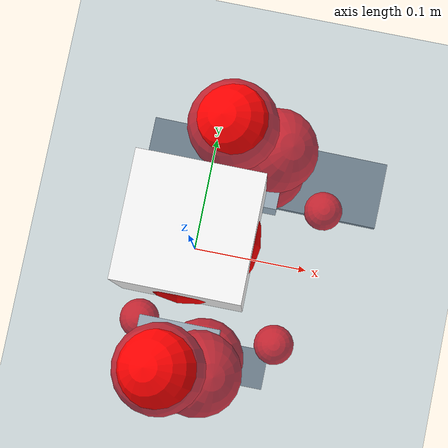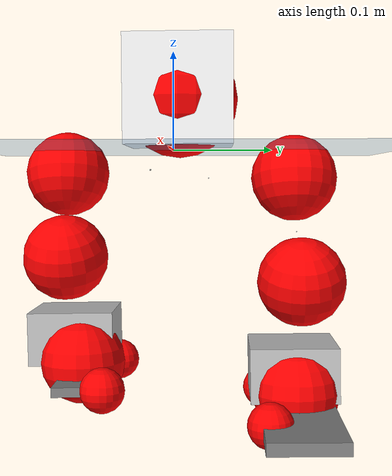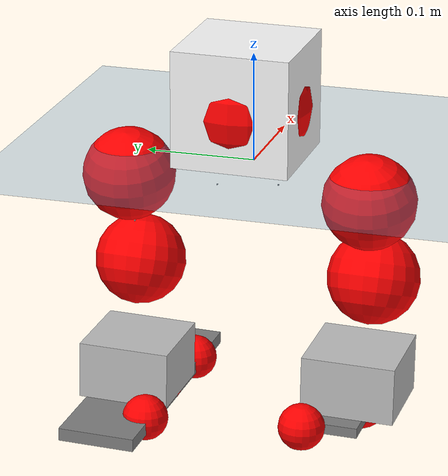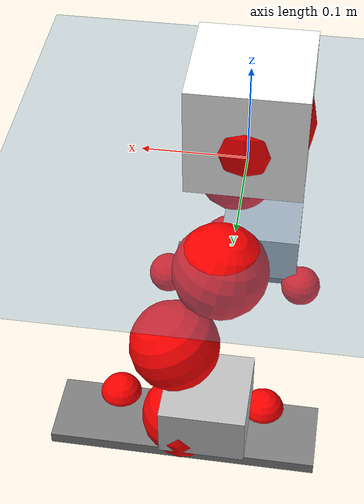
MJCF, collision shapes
<mujoco model="pi_12dof_release_v1">
  <compiler angle="radian" assetdir="assets" balanceinertia="true" inertiafromgeom="false"/>

  <option timestep="0.005" density="1.2" viscosity="2e-05"/>

  <size nkey="1"/>

  <visual>
    <quality shadowsize="8192"/>
    <map shadowclip="0.5"/>
  </visual>

  <default>
    <default class="/">
      <joint armature="0.01" damping="0.01" frictionloss="0.01"/>
      <geom contype="0" conaffinity="0" group="1" solref="-1000 -80"/>
      <site size="0.01 0.005 0.005" group="5"/>
      <general forcelimited="true" biastype="affine" gainprm="20" biasprm="0 -20 -0.5"/>
      <default class="foot">
        <geom size="0.0845 0.036 0.005" type="box" condim="6" group="4" priority="1" friction="0.9 0.2 0.2" solimp="0.015 1 0.005"/>
      </default>
      <default class="reward_collision_sphere">
        <geom group="5" rgba="1 0 0 1"/>
      </default>
    </default>
  </default>

  <asset>
    <texture type="skybox" colorspace="auto" name="//unnamed_texture_0" builtin="gradient" rgb1="0.95 0.95 0.95" rgb2="0.95 0.95 0.95" width="100" height="600"/>
    <texture type="2d" colorspace="auto" name="texplane" builtin="checker" rgb1="0.345 0.575 0.748" rgb2="0.345 0.575 0.748" markrgb="1 1 1" width="512" height="512"/>
    <material name="MatPlane" class="/" texture="texplane" texuniform="true" texrepeat="2 2" specular="0.9"/>
    <mesh name="baselink_1" class="/" file="baselink_1.STL"/>
    <mesh name="r_hip_pitch_link" class="/" file="r_hip_pitch_link.STL"/>
    <mesh name="r_hip_roll_link" class="/" file="r_hip_roll_link.STL"/>
    <mesh name="r_thigh_link" class="/" file="r_thigh_link.STL"/>
    <mesh name="r_calf_link" class="/" file="r_calf_link.STL"/>
    <mesh name="r_ankle_pitch_link" class="/" file="r_ankle_pitch_link.STL"/>
    <mesh name="r_ankle_roll_link" class="/" file="r_ankle_roll_link.STL"/>
    <mesh name="l_hip_pitch_link" class="/" file="l_hip_pitch_link.STL"/>
    <mesh name="l_hip_roll_link" class="/" file="l_hip_roll_link.STL"/>
    <mesh name="l_thigh_link" class="/" file="l_thigh_link.STL"/>
    <mesh name="l_calf_link" class="/" file="l_calf_link.STL"/>
    <mesh name="l_ankle_pitch_link" class="/" file="l_ankle_pitch_link.STL"/>
    <mesh name="l_ankle_roll_link" class="/" file="l_ankle_roll_link.STL"/>
  </asset>

  <worldbody>
    <geom name="floor" class="/" size="100 100 0.125" type="plane" group="0" material="MatPlane"/>
    <light name="toplight_shadow" class="/" pos="0 0 5" dir="0.0990148 0.0990148 -0.990148" type="directional" ambient="0.04 0.04 0.04" diffuse="0.55 0.55 0.55" specular="0.12 0.12 0.12"/>
    <light name="toplight_fill" class="/" pos="0 0 5" dir="0.0990148 0.0990148 -0.990148" type="directional" castshadow="false" ambient="0.04 0.04 0.04" diffuse="0.3 0.3 0.3" specular="0.08 0.08 0.08"/>
    <body name="trunk" pos="-0.00161679 0.00673028 0.00233719" quat="0.999994 0.0032153 0.000759096 -0.000784298">
      <inertial pos="0.00805546 0.0114928 0.0212203" quat="0.703097 0.0326451 0.00226204 0.710341" mass="2.78318" diaginertia="0.0198663 0.0638306 0.000722312"/>
      <joint name="//unnamed_joint_0" type="free"/>
      <geom name="//unnamed_geom_1" class="/" type="mesh" density="0" rgba="1 1 1 1" mesh="baselink_1"/>
      <geom name="//unnamed_geom_2" class="/" size="0.0539117 0.0539117 0.0539117" pos="0 0 0.0561674" type="box" rgba="1 1 1 1"/>
      <geom name="//unnamed_geom_3" class="reward_collision_sphere" size="0.0593029" pos="0 0 0.0491465"/>
      <site name="imu" class="/" pos="-0.00321667 0.00618542 0.00622472" size="0.0107823"/>
      <camera name="track" class="/" pos="0 -2.88096 0" quat="0.707107 0.707107 0 0" mode="trackcom"/>
      <camera name="ego_camera" class="/" pos="0.0819096 0 0.126377" quat="-0.5 -0.5 0.5 0.5"/>
      <body name="r_hip_pitch_link" pos="-0.00246465 -0.0311331 -0.0220422" quat="0.99219 9.20817e-05 -0.124734 0.000283016">
        <inertial pos="0.00288124 -0.0707756 0.0029214" quat="-0.0348482 0.67112 -0.0711104 0.737107" mass="0.467589" diaginertia="0.000164351 0.000633226 1.37701e-05"/>
        <joint name="r_hip_pitch_joint" class="/" pos="0 0 0" axis="-0.000693685 -1 -2.12852e-06" range="-1.87263 1.14001" armature="0.0101955" damping="0" frictionloss="0.00497715"/>
        <geom name="//unnamed_geom_4" class="/" type="mesh" density="0" rgba="0.75294 0.75294 0.75294 1" mesh="r_hip_pitch_link"/>
        <geom name="//unnamed_geom_5" class="/" size="0.000539117 0.000539117 0.000539117" type="box" rgba="0.75294 0.75294 0.75294 1"/>
        <body name="r_hip_roll_link" pos="-0.0086175 -0.08676 -0.00169557" quat="0.999982 0.00579191 -0.001664 -0.000571959">
          <inertial pos="-0.00134309 -0.0118804 -0.042571" quat="0.70043 -0.0669514 -0.0743098 0.706678" mass="0.465157" diaginertia="0.000594102 0.0015054 2.24419e-05"/>
          <joint name="r_hip_roll_joint" class="/" pos="0 0 0" axis="-0.999709 0.0090069 -0.0223886" stiffness="0.0105298" range="-0.105073 0.493594" armature="0.00589403" damping="0" frictionloss="0.0104128"/>
          <geom name="//unnamed_geom_6" class="/" type="mesh" density="0" rgba="0.75294 0.75294 0.75294 1" mesh="r_hip_roll_link"/>
          <geom name="//unnamed_geom_7" class="/" size="0.000539117 0.000539117 0.000539117" type="box" rgba="0.75294 0.75294 0.75294 1"/>
          <geom name="//unnamed_geom_8" class="reward_collision_sphere" size="0.0431294"/>
          <body name="r_thigh_link" pos="-0.0025598 -0.000463751 -0.0457664" quat="1 0.000438515 -0.00063923 -0.000110002">
            <inertial pos="0.00993529 0.00792415 -0.0248694" quat="0.734056 0.678943 -0.0128241 0.00587904" mass="0.147077" diaginertia="0.000209966 0.000549106 1.05675e-05"/>
            <joint name="r_thigh_joint" class="/" pos="0 0 0" axis="-0.0210402 0.0417095 -0.998908" stiffness="0.0541825" range="-0.0723249 0.82451" armature="0.0055439" damping="0.0680511" frictionloss="0.00472987"/>
            <geom name="//unnamed_geom_9" class="/" type="mesh" density="0" rgba="0.75294 0.75294 0.75294 1" mesh="r_thigh_link"/>
            <geom name="//unnamed_geom_10" class="/" size="0.000539117 0.000539117 0.000539117" type="box" rgba="0.75294 0.75294 0.75294 1"/>
            <body name="r_calf_link" pos="0.0118861 0.00129284 -0.0440778" quat="0.947678 -0.000455025 0.319226 -0.000339707">
              <inertial pos="-0.00053214 -0.00505122 -0.0448638" quat="0.998783 0.0104989 -0.0479439 -0.0047828" mass="1.08299" diaginertia="0.00608695 0.0216997 2.92998e-05"/>
              <joint name="r_calf_joint" class="/" pos="0 0 0" axis="-0.00846766 -0.998069 -0.0615379" stiffness="0.00970877" range="-1.54926 0.656428" armature="0.0101606" damping="0.0204352" frictionloss="0.00519182"/>
              <geom name="//unnamed_geom_11" class="/" type="mesh" density="0" rgba="0.75294 0.75294 0.75294 1" mesh="r_calf_link"/>
              <geom name="//unnamed_geom_12" class="/" size="0.000539117 0.000539117 0.000539117" type="box" rgba="0.75294 0.75294 0.75294 1"/>
              <geom name="//unnamed_geom_13" class="reward_collision_sphere" size="0.0431294"/>
              <body name="r_ankle_pitch_link" pos="0.00342186 0.00377813 -0.088563" quat="0.980072 0.000624579 -0.198641 0.000298648">
                <inertial pos="0.000353287 0.0114412 -0.0105942" quat="0.0101465 0.713796 -0.00997915 0.700209" mass="0.212905" diaginertia="0.000513697 0.00136133 2.02414e-05"/>
                <joint name="r_ankle_pitch_joint" class="/" pos="0 0 0" axis="0.00412079 -0.999983 -0.0040829" stiffness="0.00732159" range="-1.16128 0.712979" armature="0.00628325" damping="0.00532033" frictionloss="0.00544088"/>
                <geom name="//unnamed_geom_14" class="/" type="mesh" density="0" rgba="0.75294 0.75294 0.75294 1" mesh="r_ankle_pitch_link"/>
                <geom name="//unnamed_geom_15" class="/" size="0.0420511 0.0431294 0.0269559" type="box" rgba="0.75294 0.75294 0.75294 1"/>
                <body name="r_ankle_roll_link" pos="0.082823 0.010765 -0.00993433" quat="1 -0.000261691 -7.55315e-05 0.000491381">
                  <inertial pos="-0.0199023 -0.00627148 -0.00908242" quat="0.556426 0.433132 0.44914 0.548689" mass="0.551466" diaginertia="0.00155748 0.00494737 4.41367e-05"/>
                  <joint name="r_ankle_roll_joint" class="/" pos="0 0 0" axis="-0.997871 0.041586 0.0502466" range="-0.393786 -0.0176697" armature="0.0102561" damping="0" frictionloss="0.00948403"/>
                  <geom name="//unnamed_geom_16" class="/" type="mesh" density="0" rgba="0.75294 0.75294 0.75294 1" mesh="r_ankle_roll_link"/>
                  <geom name="//unnamed_geom_17" class="/" type="mesh" rgba="0.75294 0.75294 0.75294 1" mesh="r_ankle_roll_link"/>
                  <geom name="right_foot" class="foot" size="0.0680347 0.0208982 0.00477451" pos="-0.0556985 0 -0.0308921"/>
                  <geom name="//unnamed_geom_19" class="reward_collision_sphere" size="0.0431294" pos="-0.0546064 0 -0.0140419"/>
                  <geom name="//unnamed_geom_20" class="reward_collision_sphere" size="0.0215647" pos="0.0163819 0.0288096 -0.0280837"/>
                  <geom name="//unnamed_geom_21" class="reward_collision_sphere" size="0.0215647" pos="-0.131055 0.0288096 -0.0280837"/>
                  <site name="right_foot" class="foot" pos="-0.0556985 0 -0.0308921" size="0.0107823"/>
                </body>
              </body>
            </body>
          </body>
        </body>
      </body>
      <body name="l_hip_pitch_link" pos="0.00594938 0.0289828 -0.0310126" quat="0.992174 0.000716831 -0.12486 -0.000418399">
        <inertial pos="0.000245539 0.079359 -0.00619016" quat="-0.0364695 0.70912 0.0328595 0.703377" mass="0.58743" diaginertia="0.000209737 0.000718994 1.66747e-05"/>
        <joint name="l_hip_pitch_joint" class="/" pos="0 0 0" axis="0.0104507 0.999904 -0.00911786" range="-1.23275 1.56292" armature="0.0106419" damping="0.022829" frictionloss="0.00995247"/>
        <geom name="//unnamed_geom_22" class="/" type="mesh" density="0" rgba="0.75294 0.75294 0.75294 1" mesh="l_hip_pitch_link"/>
        <geom name="//unnamed_geom_23" class="/" size="0.000539117 0.000539117 0.000539117" type="box" rgba="0.75294 0.75294 0.75294 1"/>
        <body name="l_hip_roll_link" pos="0.00515227 0.0864467 -0.00188452" quat="0.999986 0.00254783 0.00428137 -0.0019566">
          <inertial pos="0.00041124 -0.0124626 -0.0455171" quat="0.690379 -0.105461 -0.0545435 0.713638" mass="0.556676" diaginertia="0.000551088 0.00160098 1.92012e-05"/>
          <joint name="l_hip_roll_joint" class="/" pos="0 0 0" axis="-0.999366 0.0206314 0.0290333" range="-0.528441 0.0614535" armature="0.00443374" damping="0.00844334" frictionloss="0.0136864"/>
          <geom name="//unnamed_geom_24" class="/" type="mesh" density="0" rgba="0.75294 0.75294 0.75294 1" mesh="l_hip_roll_link"/>
          <geom name="//unnamed_geom_25" class="/" size="0.000539117 0.000539117 0.000539117" type="box" rgba="0.75294 0.75294 0.75294 1"/>
          <geom name="//unnamed_geom_26" class="reward_collision_sphere" size="0.0431294"/>
          <body name="l_thigh_link" pos="0.00417974 0.000682926 -0.0560333" quat="0.999997 0.00209168 -0.000880285 0.001237">
            <inertial pos="0.00206938 -0.0105357 -0.0347409" quat="0.671906 0.74063 0.000242779 -0.00309454" mass="0.14478" diaginertia="0.000211228 0.000640445 1.08523e-05"/>
            <joint name="l_thigh_joint" class="/" pos="0 0 0" axis="0.000270415 0.000128662 -1" range="-0.654565 0.262878" armature="0.0138981" damping="0.054999" frictionloss="0.00939299"/>
            <geom name="//unnamed_geom_27" class="/" type="mesh" density="0" rgba="0.75294 0.75294 0.75294 1" mesh="l_thigh_link"/>
            <geom name="//unnamed_geom_28" class="/" size="0.000539117 0.000539117 0.000539117" type="box" rgba="0.75294 0.75294 0.75294 1"/>
            <body name="l_calf_link" pos="0.0117193 0.0022421 -0.0514449" quat="0.948747 0.00162903 0.315995 -0.00498555">
              <inertial pos="0.00176054 0.00779218 -0.0496084" quat="0.999913 0.00928088 0.00206182 0.00910113" mass="1.07614" diaginertia="0.00576462 0.0223197 2.64895e-05"/>
              <joint name="l_calf_joint" class="/" pos="0 0 0" axis="0.0169946 0.999633 0.0211044" stiffness="0.0614868" range="-0.834135 1.70855" armature="0.012773" damping="0.0184808" frictionloss="0.00971794"/>
              <geom name="//unnamed_geom_29" class="/" type="mesh" density="0" rgba="0.75294 0.75294 0.75294 1" mesh="l_calf_link"/>
              <geom name="//unnamed_geom_30" class="/" size="0.000539117 0.000539117 0.000539117" type="box" rgba="0.75294 0.75294 0.75294 1"/>
              <geom name="//unnamed_geom_31" class="reward_collision_sphere" size="0.0431294"/>
              <body name="l_ankle_pitch_link" pos="0.00721136 -0.00811563 -0.0954867" quat="0.980331 0.000229395 -0.197359 0.0011461">
                <inertial pos="0.00620511 0.00666964 -0.00125064" quat="-0.00238347 0.707201 0.00270221 0.707004" mass="0.211133" diaginertia="0.000467601 0.00138978 2.17761e-05"/>
                <joint name="l_ankle_pitch_joint" class="/" pos="0 0 0" axis="-0.00439592 0.999989 -0.00130373" range="-0.511922 1.27818" armature="0.0156968" damping="0" frictionloss="0.0140884"/>
                <geom name="//unnamed_geom_32" class="/" type="mesh" density="0" rgba="0.75294 0.75294 0.75294 1" mesh="l_ankle_pitch_link"/>
                <geom name="//unnamed_geom_33" class="/" size="0.0420511 0.0431294 0.0269559" type="box" rgba="0.75294 0.75294 0.75294 1"/>
                <body name="l_ankle_roll_link" pos="0.0766474 0.00190141 -0.00455658" quat="1 0.00018218 4.10182e-05 5.04259e-05">
                  <inertial pos="-0.0205117 0.000128621 -0.013781" quat="0.561168 0.429014 0.43388 0.559273" mass="0.59962" diaginertia="0.00172542 0.00607093 4.82201e-05"/>
                  <joint name="l_ankle_roll_joint" class="/" pos="0 0 0" axis="-0.999997 -0.00126504 0.00224935" stiffness="0.00378184" range="-0.384905 0.187216" armature="0.0108302" damping="0.0643024" frictionloss="0.0124397"/>
                  <geom name="//unnamed_geom_34" class="/" type="mesh" density="0" rgba="0.75294 0.75294 0.75294 1" mesh="l_ankle_roll_link"/>
                  <geom name="//unnamed_geom_35" class="/" type="mesh" rgba="0.75294 0.75294 0.75294 1" mesh="l_ankle_roll_link"/>
                  <geom name="left_foot" class="foot" size="0.131535 0.0361973 0.00604099" pos="-0.0556985 0 -0.0308921"/>
                  <geom name="//unnamed_geom_37" class="reward_collision_sphere" size="0.0431294" pos="-0.0546064 0 -0.0140419"/>
                  <geom name="//unnamed_geom_38" class="reward_collision_sphere" size="0.0215647" pos="0.0163819 -0.0288096 -0.0280837"/>
                  <geom name="//unnamed_geom_39" class="reward_collision_sphere" size="0.0215647" pos="-0.131055 -0.0288096 -0.0280837"/>
                  <site name="left_foot" class="foot" pos="-0.0556985 0 -0.0308921" size="0.0107823"/>
                </body>
              </body>
            </body>
          </body>
        </body>
      </body>
    </body>
  </worldbody>

  <contact>
    <pair class="/" geom1="floor" geom2="right_foot" name="//unnamed_contact_1"/>
    <pair class="/" geom1="floor" geom2="left_foot" name="//unnamed_contact_0"/>
  </contact>

  <actuator>
    <general name="r_hip_pitch_joint" class="/" joint="r_hip_pitch_joint" forcerange="-25.7428 25.7428" gainprm="23.9078" biasprm="0 -23.9078 -0.513046"/>
    <general name="r_hip_roll_joint" class="/" joint="r_hip_roll_joint" forcerange="-12.4306 12.4306" gainprm="23.9078" biasprm="0 -23.9078 -0.513046"/>
    <general name="r_thigh_joint" class="/" joint="r_thigh_joint" forcerange="-23.5283 23.5283" gainprm="23.9078" biasprm="0 -23.9078 -0.513046"/>
    <general name="r_calf_joint" class="/" joint="r_calf_joint" forcerange="-23.4523 23.4523" gainprm="23.9078" biasprm="0 -23.9078 -0.513046"/>
    <general name="r_ankle_pitch_joint" class="/" joint="r_ankle_pitch_joint" forcerange="-21.8923 21.8923" gainprm="23.9078" biasprm="0 -23.9078 -0.513046"/>
    <general name="r_ankle_roll_joint" class="/" joint="r_ankle_roll_joint" forcerange="-15.8252 15.8252" gainprm="23.9078" biasprm="0 -23.9078 -0.513046"/>
    <general name="l_hip_pitch_joint" class="/" joint="l_hip_pitch_joint" forcerange="-19.0105 19.0105" gainprm="23.9078" biasprm="0 -23.9078 -0.513046"/>
    <general name="l_hip_roll_joint" class="/" joint="l_hip_roll_joint" forcerange="-21.5514 21.5514" gainprm="23.9078" biasprm="0 -23.9078 -0.513046"/>
    <general name="l_thigh_joint" class="/" joint="l_thigh_joint" forcerange="-23.7707 23.7707" gainprm="23.9078" biasprm="0 -23.9078 -0.513046"/>
    <general name="l_calf_joint" class="/" joint="l_calf_joint" forcerange="-26.762 26.762" gainprm="23.9078" biasprm="0 -23.9078 -0.513046"/>
    <general name="l_ankle_pitch_joint" class="/" joint="l_ankle_pitch_joint" forcerange="-21.3454 21.3454" gainprm="23.9078" biasprm="0 -23.9078 -0.513046"/>
    <general name="l_ankle_roll_joint" class="/" joint="l_ankle_roll_joint" forcerange="-29.0714 29.0714" gainprm="23.9078" biasprm="0 -23.9078 -0.513046"/>
  </actuator>

  <sensor>
    <gyro site="imu" name="imu_angular_velocity"/>
    <velocimeter site="imu" name="imu_linear_velocity"/>
    <framelinvel objtype="site" objname="left_foot" name="left_foot_global_linear_velocity"/>
    <framelinvel objtype="site" objname="right_foot" name="right_foot_global_linear_velocity"/>
  </sensor>

  <keyframe>
    <key name="home" qpos="0 0 0.291 1 0 0 0 0.4 0 0 -0.8 0.4 0 -0.4 0 0 0.8 -0.4 0"/>
  </keyframe>
</mujoco>
